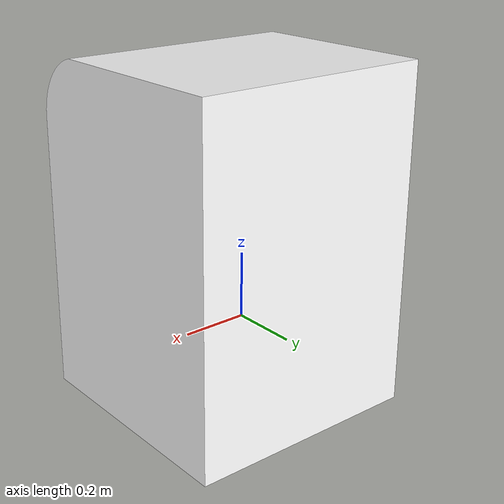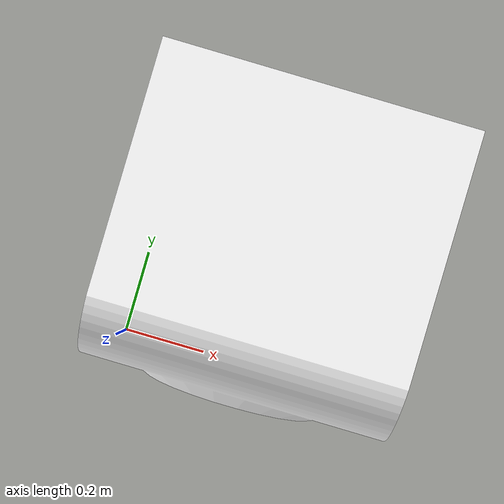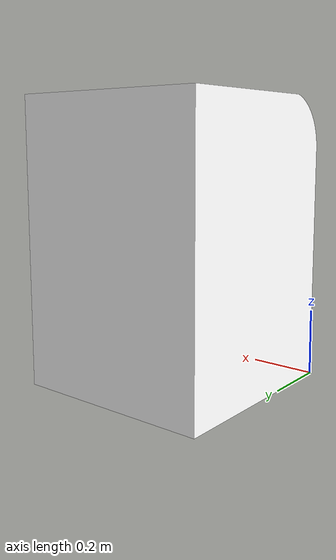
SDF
<?xml version='1.0'?>
<sdf version='1.7'>
  <model name='washingmachine'>
    <link name='link'>
      <pose>0 0 0 0 0 0</pose>
      <visual name='visual'>
        <geometry>
          <mesh>
            <uri>/root/workspace/self_gazebo_models/washingmachine/meshes/model.dae</uri>
          </mesh>
        </geometry>
        <material>
          <script>
	          <uri>/root/workspace/self_gazebo_models/washingmachine/materials/scripts</uri>
            <uri>/root/workspace/self_gazebo_models/washingmachine/materials/textures</uri>
            <name>Balcony/Washingmachine</name>
          </script>
          <ambient>1 1 1 1</ambient>
        </material>
      </visual>
      <collision name='collision'>
        <geometry>
          <mesh>
            <uri>/root/workspace/self_gazebo_models/washingmachine/meshes/model.dae</uri>
            <scale>1 1 1</scale>
          </mesh>
        </geometry>
      </collision>
    </link>
    <static>1</static>
    <allow_auto_disable>1</allow_auto_disable>
  </model>
</sdf>
